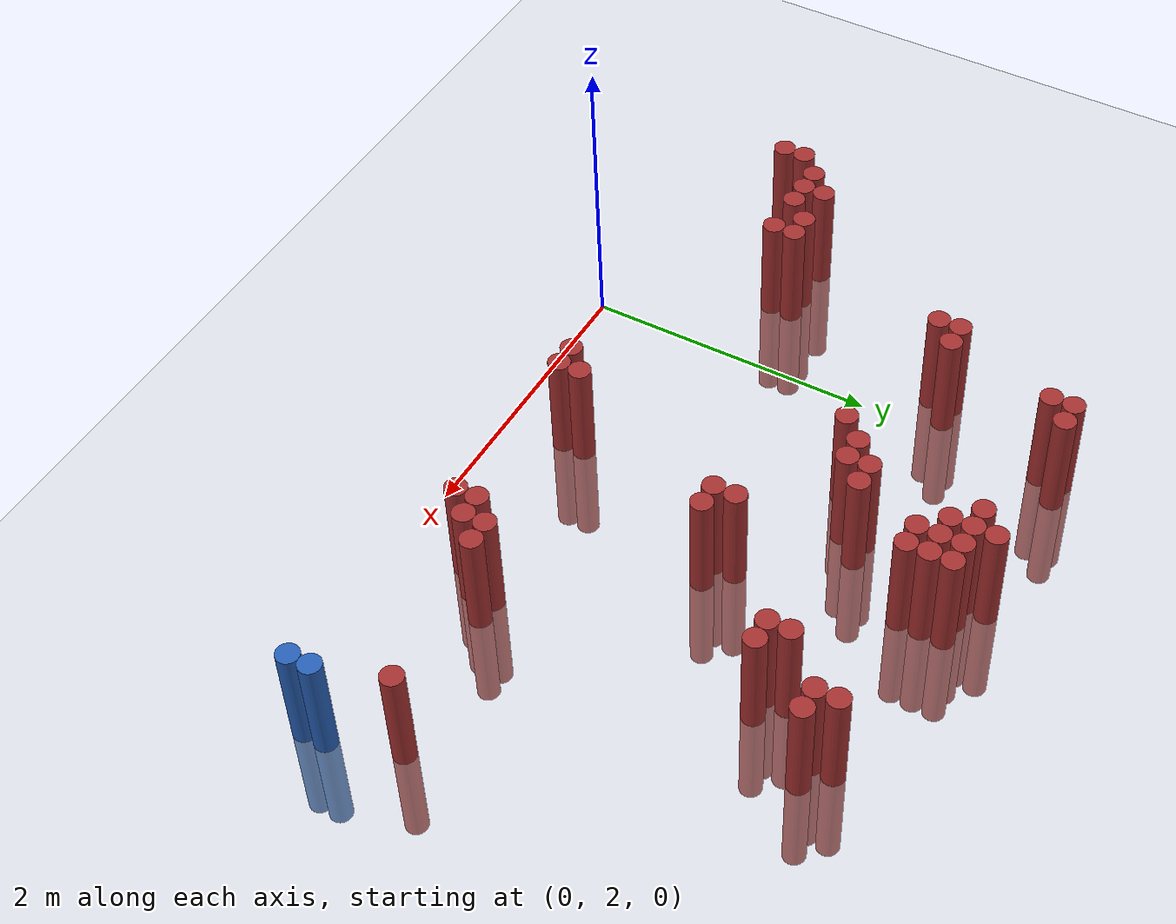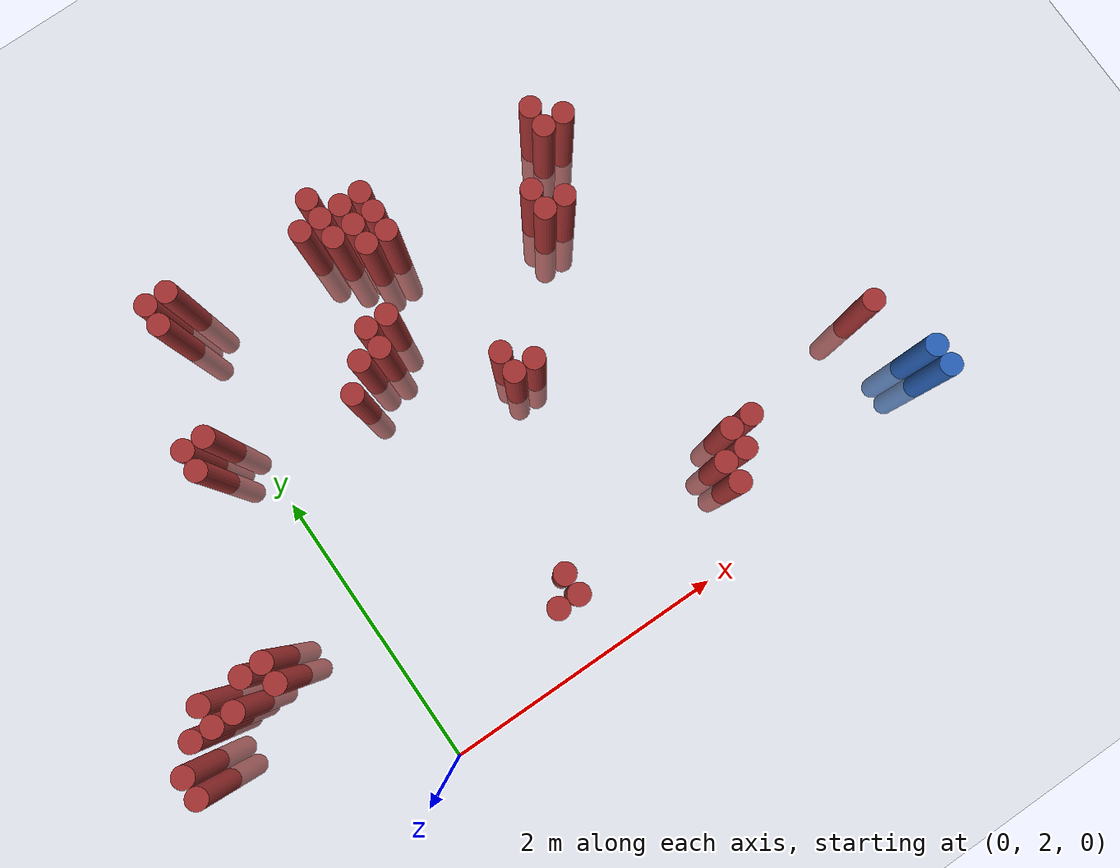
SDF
<sdf version="1.6">
 <world name="default">
  <model name="ground_plane">
   <static>1</static>
   <link name="link">
    <collision name="collision">
     <geometry><plane><normal>0 0 1</normal><size>100 100</size></plane></geometry>
     <surface><friction><ode><mu>100</mu><mu2>50</mu2></ode></friction></surface>
    </collision>
    <visual name="visual">
     <cast_shadows>0</cast_shadows>
     <geometry><plane><normal>0 0 1</normal><size>100 100</size></plane></geometry>
     <material>
      <script><uri>file://media/materials/scripts/gazebo.material</uri><name>Gazebo/Grey</name></script>
     </material>
    </visual>
   </link>
  </model>
  <model name="unit_cylinder_144">
   <static>1</static>
   <pose>3.925000 2.275000 0.000000 0.000000 0.000000 0.000000</pose>
   <link name="link">
    <inertial>
     <mass>1</mass>
     <inertia><ixx>0.145833</ixx><ixy>0</ixy><ixz>0</ixz><iyy>0.145833</iyy><iyz>0</iyz><izz>0.125</izz></inertia>
    </inertial>
    <collision name="collision">
     <geometry><cylinder><radius>0.075000</radius><length>1.5</length></cylinder></geometry>
    </collision>
    <visual name="visual">
     <geometry><cylinder><radius>0.075000</radius><length>1.5</length></cylinder></geometry>
     <material>
      <ambient>0.152000 0.379000 0.720000 1</ambient>
      <diffuse>0.152000 0.379000 0.720000 1</diffuse>
     </material>
     <material>
      <script><name>Gazebo/Grey</name><uri>file://media/materials/scripts/gazebo.material</uri></script>
     </material>
    </visual>
   </link>
  </model>
  <model name="unit_cylinder_146">
   <static>1</static>
   <pose>3.925000 2.425000 0.000000 0.000000 0.000000 0.000000</pose>
   <link name="link">
    <inertial>
     <mass>1</mass>
     <inertia><ixx>0.145833</ixx><ixy>0</ixy><ixz>0</ixz><iyy>0.145833</iyy><iyz>0</iyz><izz>0.125</izz></inertia>
    </inertial>
    <collision name="collision">
     <geometry><cylinder><radius>0.075000</radius><length>1.5</length></cylinder></geometry>
    </collision>
    <visual name="visual">
     <geometry><cylinder><radius>0.075000</radius><length>1.5</length></cylinder></geometry>
     <material>
      <ambient>0.152000 0.379000 0.720000 1</ambient>
      <diffuse>0.152000 0.379000 0.720000 1</diffuse>
     </material>
     <material>
      <script><name>Gazebo/Grey</name><uri>file://media/materials/scripts/gazebo.material</uri></script>
     </material>
    </visual>
   </link>
  </model>
  <model name="unit_cylinder_351">
   <static>1</static>
   <pose>-1.325000 2.725000 0.000000 0.000000 0.000000 0.000000</pose>
   <link name="link">
    <inertial>
     <mass>1</mass>
     <inertia><ixx>0.145833</ixx><ixy>0</ixy><ixz>0</ixz><iyy>0.145833</iyy><iyz>0</iyz><izz>0.125</izz></inertia>
    </inertial>
    <collision name="collision">
     <geometry><cylinder><radius>0.075000</radius><length>1.5</length></cylinder></geometry>
    </collision>
    <visual name="visual">
     <geometry><cylinder><radius>0.075000</radius><length>1.5</length></cylinder></geometry>
     <material>
      <ambient>0.648000 0.192000 0.192000 1</ambient>
      <diffuse>0.648000 0.192000 0.192000 1</diffuse>
     </material>
     <material>
      <script><name>Gazebo/Grey</name><uri>file://media/materials/scripts/gazebo.material</uri></script>
     </material>
    </visual>
   </link>
  </model>
  <model name="unit_cylinder_352">
   <static>1</static>
   <pose>-1.325000 2.875000 0.000000 0.000000 0.000000 0.000000</pose>
   <link name="link">
    <inertial>
     <mass>1</mass>
     <inertia><ixx>0.145833</ixx><ixy>0</ixy><ixz>0</ixz><iyy>0.145833</iyy><iyz>0</iyz><izz>0.125</izz></inertia>
    </inertial>
    <collision name="collision">
     <geometry><cylinder><radius>0.075000</radius><length>1.5</length></cylinder></geometry>
    </collision>
    <visual name="visual">
     <geometry><cylinder><radius>0.075000</radius><length>1.5</length></cylinder></geometry>
     <material>
      <ambient>0.648000 0.192000 0.192000 1</ambient>
      <diffuse>0.648000 0.192000 0.192000 1</diffuse>
     </material>
     <material>
      <script><name>Gazebo/Grey</name><uri>file://media/materials/scripts/gazebo.material</uri></script>
     </material>
    </visual>
   </link>
  </model>
  <model name="unit_cylinder_355">
   <static>1</static>
   <pose>-1.175000 3.025000 0.000000 0.000000 0.000000 0.000000</pose>
   <link name="link">
    <inertial>
     <mass>1</mass>
     <inertia><ixx>0.145833</ixx><ixy>0</ixy><ixz>0</ixz><iyy>0.145833</iyy><iyz>0</iyz><izz>0.125</izz></inertia>
    </inertial>
    <collision name="collision">
     <geometry><cylinder><radius>0.075000</radius><length>1.5</length></cylinder></geometry>
    </collision>
    <visual name="visual">
     <geometry><cylinder><radius>0.075000</radius><length>1.5</length></cylinder></geometry>
     <material>
      <ambient>0.648000 0.192000 0.192000 1</ambient>
      <diffuse>0.648000 0.192000 0.192000 1</diffuse>
     </material>
     <material>
      <script><name>Gazebo/Grey</name><uri>file://media/materials/scripts/gazebo.material</uri></script>
     </material>
    </visual>
   </link>
  </model>
  <model name="unit_cylinder_362">
   <static>1</static>
   <pose>-1.025000 3.025000 0.000000 0.000000 0.000000 0.000000</pose>
   <link name="link">
    <inertial>
     <mass>1</mass>
     <inertia><ixx>0.145833</ixx><ixy>0</ixy><ixz>0</ixz><iyy>0.145833</iyy><iyz>0</iyz><izz>0.125</izz></inertia>
    </inertial>
    <collision name="collision">
     <geometry><cylinder><radius>0.075000</radius><length>1.5</length></cylinder></geometry>
    </collision>
    <visual name="visual">
     <geometry><cylinder><radius>0.075000</radius><length>1.5</length></cylinder></geometry>
     <material>
      <ambient>0.648000 0.192000 0.192000 1</ambient>
      <diffuse>0.648000 0.192000 0.192000 1</diffuse>
     </material>
     <material>
      <script><name>Gazebo/Grey</name><uri>file://media/materials/scripts/gazebo.material</uri></script>
     </material>
    </visual>
   </link>
  </model>
  <model name="unit_cylinder_363">
   <static>1</static>
   <pose>-1.025000 3.175000 0.000000 0.000000 0.000000 0.000000</pose>
   <link name="link">
    <inertial>
     <mass>1</mass>
     <inertia><ixx>0.145833</ixx><ixy>0</ixy><ixz>0</ixz><iyy>0.145833</iyy><iyz>0</iyz><izz>0.125</izz></inertia>
    </inertial>
    <collision name="collision">
     <geometry><cylinder><radius>0.075000</radius><length>1.5</length></cylinder></geometry>
    </collision>
    <visual name="visual">
     <geometry><cylinder><radius>0.075000</radius><length>1.5</length></cylinder></geometry>
     <material>
      <ambient>0.648000 0.192000 0.192000 1</ambient>
      <diffuse>0.648000 0.192000 0.192000 1</diffuse>
     </material>
     <material>
      <script><name>Gazebo/Grey</name><uri>file://media/materials/scripts/gazebo.material</uri></script>
     </material>
    </visual>
   </link>
  </model>
  <model name="unit_cylinder_369">
   <static>1</static>
   <pose>-0.875000 3.025000 0.000000 0.000000 0.000000 0.000000</pose>
   <link name="link">
    <inertial>
     <mass>1</mass>
     <inertia><ixx>0.145833</ixx><ixy>0</ixy><ixz>0</ixz><iyy>0.145833</iyy><iyz>0</iyz><izz>0.125</izz></inertia>
    </inertial>
    <collision name="collision">
     <geometry><cylinder><radius>0.075000</radius><length>1.5</length></cylinder></geometry>
    </collision>
    <visual name="visual">
     <geometry><cylinder><radius>0.075000</radius><length>1.5</length></cylinder></geometry>
     <material>
      <ambient>0.648000 0.192000 0.192000 1</ambient>
      <diffuse>0.648000 0.192000 0.192000 1</diffuse>
     </material>
     <material>
      <script><name>Gazebo/Grey</name><uri>file://media/materials/scripts/gazebo.material</uri></script>
     </material>
    </visual>
   </link>
  </model>
  <model name="unit_cylinder_371">
   <static>1</static>
   <pose>-0.725000 3.175000 0.000000 0.000000 0.000000 0.000000</pose>
   <link name="link">
    <inertial>
     <mass>1</mass>
     <inertia><ixx>0.145833</ixx><ixy>0</ixy><ixz>0</ixz><iyy>0.145833</iyy><iyz>0</iyz><izz>0.125</izz></inertia>
    </inertial>
    <collision name="collision">
     <geometry><cylinder><radius>0.075000</radius><length>1.5</length></cylinder></geometry>
    </collision>
    <visual name="visual">
     <geometry><cylinder><radius>0.075000</radius><length>1.5</length></cylinder></geometry>
     <material>
      <ambient>0.648000 0.192000 0.192000 1</ambient>
      <diffuse>0.648000 0.192000 0.192000 1</diffuse>
     </material>
     <material>
      <script><name>Gazebo/Grey</name><uri>file://media/materials/scripts/gazebo.material</uri></script>
     </material>
    </visual>
   </link>
  </model>
  <model name="unit_cylinder_372">
   <static>1</static>
   <pose>-0.575000 3.025000 0.000000 0.000000 0.000000 0.000000</pose>
   <link name="link">
    <inertial>
     <mass>1</mass>
     <inertia><ixx>0.145833</ixx><ixy>0</ixy><ixz>0</ixz><iyy>0.145833</iyy><iyz>0</iyz><izz>0.125</izz></inertia>
    </inertial>
    <collision name="collision">
     <geometry><cylinder><radius>0.075000</radius><length>1.5</length></cylinder></geometry>
    </collision>
    <visual name="visual">
     <geometry><cylinder><radius>0.075000</radius><length>1.5</length></cylinder></geometry>
     <material>
      <ambient>0.648000 0.192000 0.192000 1</ambient>
      <diffuse>0.648000 0.192000 0.192000 1</diffuse>
     </material>
     <material>
      <script><name>Gazebo/Grey</name><uri>file://media/materials/scripts/gazebo.material</uri></script>
     </material>
    </visual>
   </link>
  </model>
  <model name="unit_cylinder_373">
   <static>1</static>
   <pose>-0.575000 3.175000 0.000000 0.000000 0.000000 0.000000</pose>
   <link name="link">
    <inertial>
     <mass>1</mass>
     <inertia><ixx>0.145833</ixx><ixy>0</ixy><ixz>0</ixz><iyy>0.145833</iyy><iyz>0</iyz><izz>0.125</izz></inertia>
    </inertial>
    <collision name="collision">
     <geometry><cylinder><radius>0.075000</radius><length>1.5</length></cylinder></geometry>
    </collision>
    <visual name="visual">
     <geometry><cylinder><radius>0.075000</radius><length>1.5</length></cylinder></geometry>
     <material>
      <ambient>0.648000 0.192000 0.192000 1</ambient>
      <diffuse>0.648000 0.192000 0.192000 1</diffuse>
     </material>
     <material>
      <script><name>Gazebo/Grey</name><uri>file://media/materials/scripts/gazebo.material</uri></script>
     </material>
    </visual>
   </link>
  </model>
  <model name="unit_cylinder_376">
   <static>1</static>
   <pose>-0.275000 4.375000 0.000000 0.000000 0.000000 0.000000</pose>
   <link name="link">
    <inertial>
     <mass>1</mass>
     <inertia><ixx>0.145833</ixx><ixy>0</ixy><ixz>0</ixz><iyy>0.145833</iyy><iyz>0</iyz><izz>0.125</izz></inertia>
    </inertial>
    <collision name="collision">
     <geometry><cylinder><radius>0.075000</radius><length>1.5</length></cylinder></geometry>
    </collision>
    <visual name="visual">
     <geometry><cylinder><radius>0.075000</radius><length>1.5</length></cylinder></geometry>
     <material>
      <ambient>0.648000 0.192000 0.192000 1</ambient>
      <diffuse>0.648000 0.192000 0.192000 1</diffuse>
     </material>
     <material>
      <script><name>Gazebo/Grey</name><uri>file://media/materials/scripts/gazebo.material</uri></script>
     </material>
    </visual>
   </link>
  </model>
  <model name="unit_cylinder_377">
   <static>1</static>
   <pose>-0.275000 4.525000 0.000000 0.000000 0.000000 0.000000</pose>
   <link name="link">
    <inertial>
     <mass>1</mass>
     <inertia><ixx>0.145833</ixx><ixy>0</ixy><ixz>0</ixz><iyy>0.145833</iyy><iyz>0</iyz><izz>0.125</izz></inertia>
    </inertial>
    <collision name="collision">
     <geometry><cylinder><radius>0.075000</radius><length>1.5</length></cylinder></geometry>
    </collision>
    <visual name="visual">
     <geometry><cylinder><radius>0.075000</radius><length>1.5</length></cylinder></geometry>
     <material>
      <ambient>0.648000 0.192000 0.192000 1</ambient>
      <diffuse>0.648000 0.192000 0.192000 1</diffuse>
     </material>
     <material>
      <script><name>Gazebo/Grey</name><uri>file://media/materials/scripts/gazebo.material</uri></script>
     </material>
    </visual>
   </link>
  </model>
  <model name="unit_cylinder_381">
   <static>1</static>
   <pose>-0.125000 4.525000 0.000000 0.000000 0.000000 0.000000</pose>
   <link name="link">
    <inertial>
     <mass>1</mass>
     <inertia><ixx>0.145833</ixx><ixy>0</ixy><ixz>0</ixz><iyy>0.145833</iyy><iyz>0</iyz><izz>0.125</izz></inertia>
    </inertial>
    <collision name="collision">
     <geometry><cylinder><radius>0.075000</radius><length>1.5</length></cylinder></geometry>
    </collision>
    <visual name="visual">
     <geometry><cylinder><radius>0.075000</radius><length>1.5</length></cylinder></geometry>
     <material>
      <ambient>0.648000 0.192000 0.192000 1</ambient>
      <diffuse>0.648000 0.192000 0.192000 1</diffuse>
     </material>
     <material>
      <script><name>Gazebo/Grey</name><uri>file://media/materials/scripts/gazebo.material</uri></script>
     </material>
    </visual>
   </link>
  </model>
  <model name="unit_cylinder_383">
   <static>1</static>
   <pose>0.025000 5.275000 0.000000 0.000000 0.000000 0.000000</pose>
   <link name="link">
    <inertial>
     <mass>1</mass>
     <inertia><ixx>0.145833</ixx><ixy>0</ixy><ixz>0</ixz><iyy>0.145833</iyy><iyz>0</iyz><izz>0.125</izz></inertia>
    </inertial>
    <collision name="collision">
     <geometry><cylinder><radius>0.075000</radius><length>1.5</length></cylinder></geometry>
    </collision>
    <visual name="visual">
     <geometry><cylinder><radius>0.075000</radius><length>1.5</length></cylinder></geometry>
     <material>
      <ambient>0.648000 0.192000 0.192000 1</ambient>
      <diffuse>0.648000 0.192000 0.192000 1</diffuse>
     </material>
     <material>
      <script><name>Gazebo/Grey</name><uri>file://media/materials/scripts/gazebo.material</uri></script>
     </material>
    </visual>
   </link>
  </model>
  <model name="unit_cylinder_384">
   <static>1</static>
   <pose>0.025000 5.425000 0.000000 0.000000 0.000000 0.000000</pose>
   <link name="link">
    <inertial>
     <mass>1</mass>
     <inertia><ixx>0.145833</ixx><ixy>0</ixy><ixz>0</ixz><iyy>0.145833</iyy><iyz>0</iyz><izz>0.125</izz></inertia>
    </inertial>
    <collision name="collision">
     <geometry><cylinder><radius>0.075000</radius><length>1.5</length></cylinder></geometry>
    </collision>
    <visual name="visual">
     <geometry><cylinder><radius>0.075000</radius><length>1.5</length></cylinder></geometry>
     <material>
      <ambient>0.648000 0.192000 0.192000 1</ambient>
      <diffuse>0.648000 0.192000 0.192000 1</diffuse>
     </material>
     <material>
      <script><name>Gazebo/Grey</name><uri>file://media/materials/scripts/gazebo.material</uri></script>
     </material>
    </visual>
   </link>
  </model>
  <model name="unit_cylinder_385">
   <static>1</static>
   <pose>0.175000 5.425000 0.000000 0.000000 0.000000 0.000000</pose>
   <link name="link">
    <inertial>
     <mass>1</mass>
     <inertia><ixx>0.145833</ixx><ixy>0</ixy><ixz>0</ixz><iyy>0.145833</iyy><iyz>0</iyz><izz>0.125</izz></inertia>
    </inertial>
    <collision name="collision">
     <geometry><cylinder><radius>0.075000</radius><length>1.5</length></cylinder></geometry>
    </collision>
    <visual name="visual">
     <geometry><cylinder><radius>0.075000</radius><length>1.5</length></cylinder></geometry>
     <material>
      <ambient>0.648000 0.192000 0.192000 1</ambient>
      <diffuse>0.648000 0.192000 0.192000 1</diffuse>
     </material>
     <material>
      <script><name>Gazebo/Grey</name><uri>file://media/materials/scripts/gazebo.material</uri></script>
     </material>
    </visual>
   </link>
  </model>
  <model name="unit_cylinder_389">
   <static>1</static>
   <pose>0.775000 4.225000 0.000000 0.000000 0.000000 0.000000</pose>
   <link name="link">
    <inertial>
     <mass>1</mass>
     <inertia><ixx>0.145833</ixx><ixy>0</ixy><ixz>0</ixz><iyy>0.145833</iyy><iyz>0</iyz><izz>0.125</izz></inertia>
    </inertial>
    <collision name="collision">
     <geometry><cylinder><radius>0.075000</radius><length>1.5</length></cylinder></geometry>
    </collision>
    <visual name="visual">
     <geometry><cylinder><radius>0.075000</radius><length>1.5</length></cylinder></geometry>
     <material>
      <ambient>0.648000 0.192000 0.192000 1</ambient>
      <diffuse>0.648000 0.192000 0.192000 1</diffuse>
     </material>
     <material>
      <script><name>Gazebo/Grey</name><uri>file://media/materials/scripts/gazebo.material</uri></script>
     </material>
    </visual>
   </link>
  </model>
  <model name="unit_cylinder_390">
   <static>1</static>
   <pose>0.925000 4.375000 0.000000 0.000000 0.000000 0.000000</pose>
   <link name="link">
    <inertial>
     <mass>1</mass>
     <inertia><ixx>0.145833</ixx><ixy>0</ixy><ixz>0</ixz><iyy>0.145833</iyy><iyz>0</iyz><izz>0.125</izz></inertia>
    </inertial>
    <collision name="collision">
     <geometry><cylinder><radius>0.075000</radius><length>1.5</length></cylinder></geometry>
    </collision>
    <visual name="visual">
     <geometry><cylinder><radius>0.075000</radius><length>1.5</length></cylinder></geometry>
     <material>
      <ambient>0.648000 0.192000 0.192000 1</ambient>
      <diffuse>0.648000 0.192000 0.192000 1</diffuse>
     </material>
     <material>
      <script><name>Gazebo/Grey</name><uri>file://media/materials/scripts/gazebo.material</uri></script>
     </material>
    </visual>
   </link>
  </model>
  <model name="unit_cylinder_391">
   <static>1</static>
   <pose>1.075000 2.425000 0.000000 0.000000 0.000000 0.000000</pose>
   <link name="link">
    <inertial>
     <mass>1</mass>
     <inertia><ixx>0.145833</ixx><ixy>0</ixy><ixz>0</ixz><iyy>0.145833</iyy><iyz>0</iyz><izz>0.125</izz></inertia>
    </inertial>
    <collision name="collision">
     <geometry><cylinder><radius>0.075000</radius><length>1.5</length></cylinder></geometry>
    </collision>
    <visual name="visual">
     <geometry><cylinder><radius>0.075000</radius><length>1.5</length></cylinder></geometry>
     <material>
      <ambient>0.648000 0.192000 0.192000 1</ambient>
      <diffuse>0.648000 0.192000 0.192000 1</diffuse>
     </material>
     <material>
      <script><name>Gazebo/Grey</name><uri>file://media/materials/scripts/gazebo.material</uri></script>
     </material>
    </visual>
   </link>
  </model>
  <model name="unit_cylinder_392">
   <static>1</static>
   <pose>1.075000 4.375000 0.000000 0.000000 0.000000 0.000000</pose>
   <link name="link">
    <inertial>
     <mass>1</mass>
     <inertia><ixx>0.145833</ixx><ixy>0</ixy><ixz>0</ixz><iyy>0.145833</iyy><iyz>0</iyz><izz>0.125</izz></inertia>
    </inertial>
    <collision name="collision">
     <geometry><cylinder><radius>0.075000</radius><length>1.5</length></cylinder></geometry>
    </collision>
    <visual name="visual">
     <geometry><cylinder><radius>0.075000</radius><length>1.5</length></cylinder></geometry>
     <material>
      <ambient>0.648000 0.192000 0.192000 1</ambient>
      <diffuse>0.648000 0.192000 0.192000 1</diffuse>
     </material>
     <material>
      <script><name>Gazebo/Grey</name><uri>file://media/materials/scripts/gazebo.material</uri></script>
     </material>
    </visual>
   </link>
  </model>
  <model name="unit_cylinder_393">
   <static>1</static>
   <pose>1.075000 4.525000 0.000000 0.000000 0.000000 0.000000</pose>
   <link name="link">
    <inertial>
     <mass>1</mass>
     <inertia><ixx>0.145833</ixx><ixy>0</ixy><ixz>0</ixz><iyy>0.145833</iyy><iyz>0</iyz><izz>0.125</izz></inertia>
    </inertial>
    <collision name="collision">
     <geometry><cylinder><radius>0.075000</radius><length>1.5</length></cylinder></geometry>
    </collision>
    <visual name="visual">
     <geometry><cylinder><radius>0.075000</radius><length>1.5</length></cylinder></geometry>
     <material>
      <ambient>0.648000 0.192000 0.192000 1</ambient>
      <diffuse>0.648000 0.192000 0.192000 1</diffuse>
     </material>
     <material>
      <script><name>Gazebo/Grey</name><uri>file://media/materials/scripts/gazebo.material</uri></script>
     </material>
    </visual>
   </link>
  </model>
  <model name="unit_cylinder_394">
   <static>1</static>
   <pose>1.075000 5.275000 0.000000 0.000000 0.000000 0.000000</pose>
   <link name="link">
    <inertial>
     <mass>1</mass>
     <inertia><ixx>0.145833</ixx><ixy>0</ixy><ixz>0</ixz><iyy>0.145833</iyy><iyz>0</iyz><izz>0.125</izz></inertia>
    </inertial>
    <collision name="collision">
     <geometry><cylinder><radius>0.075000</radius><length>1.5</length></cylinder></geometry>
    </collision>
    <visual name="visual">
     <geometry><cylinder><radius>0.075000</radius><length>1.5</length></cylinder></geometry>
     <material>
      <ambient>0.648000 0.192000 0.192000 1</ambient>
      <diffuse>0.648000 0.192000 0.192000 1</diffuse>
     </material>
     <material>
      <script><name>Gazebo/Grey</name><uri>file://media/materials/scripts/gazebo.material</uri></script>
     </material>
    </visual>
   </link>
  </model>
  <model name="unit_cylinder_395">
   <static>1</static>
   <pose>1.225000 2.425000 0.000000 0.000000 0.000000 0.000000</pose>
   <link name="link">
    <inertial>
     <mass>1</mass>
     <inertia><ixx>0.145833</ixx><ixy>0</ixy><ixz>0</ixz><iyy>0.145833</iyy><iyz>0</iyz><izz>0.125</izz></inertia>
    </inertial>
    <collision name="collision">
     <geometry><cylinder><radius>0.075000</radius><length>1.5</length></cylinder></geometry>
    </collision>
    <visual name="visual">
     <geometry><cylinder><radius>0.075000</radius><length>1.5</length></cylinder></geometry>
     <material>
      <ambient>0.648000 0.192000 0.192000 1</ambient>
      <diffuse>0.648000 0.192000 0.192000 1</diffuse>
     </material>
     <material>
      <script><name>Gazebo/Grey</name><uri>file://media/materials/scripts/gazebo.material</uri></script>
     </material>
    </visual>
   </link>
  </model>
  <model name="unit_cylinder_396">
   <static>1</static>
   <pose>1.225000 2.575000 0.000000 0.000000 0.000000 0.000000</pose>
   <link name="link">
    <inertial>
     <mass>1</mass>
     <inertia><ixx>0.145833</ixx><ixy>0</ixy><ixz>0</ixz><iyy>0.145833</iyy><iyz>0</iyz><izz>0.125</izz></inertia>
    </inertial>
    <collision name="collision">
     <geometry><cylinder><radius>0.075000</radius><length>1.5</length></cylinder></geometry>
    </collision>
    <visual name="visual">
     <geometry><cylinder><radius>0.075000</radius><length>1.5</length></cylinder></geometry>
     <material>
      <ambient>0.648000 0.192000 0.192000 1</ambient>
      <diffuse>0.648000 0.192000 0.192000 1</diffuse>
     </material>
     <material>
      <script><name>Gazebo/Grey</name><uri>file://media/materials/scripts/gazebo.material</uri></script>
     </material>
    </visual>
   </link>
  </model>
  <model name="unit_cylinder_397">
   <static>1</static>
   <pose>1.225000 4.525000 0.000000 0.000000 0.000000 0.000000</pose>
   <link name="link">
    <inertial>
     <mass>1</mass>
     <inertia><ixx>0.145833</ixx><ixy>0</ixy><ixz>0</ixz><iyy>0.145833</iyy><iyz>0</iyz><izz>0.125</izz></inertia>
    </inertial>
    <collision name="collision">
     <geometry><cylinder><radius>0.075000</radius><length>1.5</length></cylinder></geometry>
    </collision>
    <visual name="visual">
     <geometry><cylinder><radius>0.075000</radius><length>1.5</length></cylinder></geometry>
     <material>
      <ambient>0.648000 0.192000 0.192000 1</ambient>
      <diffuse>0.648000 0.192000 0.192000 1</diffuse>
     </material>
     <material>
      <script><name>Gazebo/Grey</name><uri>file://media/materials/scripts/gazebo.material</uri></script>
     </material>
    </visual>
   </link>
  </model>
  <model name="unit_cylinder_398">
   <static>1</static>
   <pose>1.225000 5.125000 0.000000 0.000000 0.000000 0.000000</pose>
   <link name="link">
    <inertial>
     <mass>1</mass>
     <inertia><ixx>0.145833</ixx><ixy>0</ixy><ixz>0</ixz><iyy>0.145833</iyy><iyz>0</iyz><izz>0.125</izz></inertia>
    </inertial>
    <collision name="collision">
     <geometry><cylinder><radius>0.075000</radius><length>1.5</length></cylinder></geometry>
    </collision>
    <visual name="visual">
     <geometry><cylinder><radius>0.075000</radius><length>1.5</length></cylinder></geometry>
     <material>
      <ambient>0.648000 0.192000 0.192000 1</ambient>
      <diffuse>0.648000 0.192000 0.192000 1</diffuse>
     </material>
     <material>
      <script><name>Gazebo/Grey</name><uri>file://media/materials/scripts/gazebo.material</uri></script>
     </material>
    </visual>
   </link>
  </model>
  <model name="unit_cylinder_399">
   <static>1</static>
   <pose>1.225000 5.275000 0.000000 0.000000 0.000000 0.000000</pose>
   <link name="link">
    <inertial>
     <mass>1</mass>
     <inertia><ixx>0.145833</ixx><ixy>0</ixy><ixz>0</ixz><iyy>0.145833</iyy><iyz>0</iyz><izz>0.125</izz></inertia>
    </inertial>
    <collision name="collision">
     <geometry><cylinder><radius>0.075000</radius><length>1.5</length></cylinder></geometry>
    </collision>
    <visual name="visual">
     <geometry><cylinder><radius>0.075000</radius><length>1.5</length></cylinder></geometry>
     <material>
      <ambient>0.648000 0.192000 0.192000 1</ambient>
      <diffuse>0.648000 0.192000 0.192000 1</diffuse>
     </material>
     <material>
      <script><name>Gazebo/Grey</name><uri>file://media/materials/scripts/gazebo.material</uri></script>
     </material>
    </visual>
   </link>
  </model>
  <model name="unit_cylinder_400">
   <static>1</static>
   <pose>1.225000 5.425000 0.000000 0.000000 0.000000 0.000000</pose>
   <link name="link">
    <inertial>
     <mass>1</mass>
     <inertia><ixx>0.145833</ixx><ixy>0</ixy><ixz>0</ixz><iyy>0.145833</iyy><iyz>0</iyz><izz>0.125</izz></inertia>
    </inertial>
    <collision name="collision">
     <geometry><cylinder><radius>0.075000</radius><length>1.5</length></cylinder></geometry>
    </collision>
    <visual name="visual">
     <geometry><cylinder><radius>0.075000</radius><length>1.5</length></cylinder></geometry>
     <material>
      <ambient>0.648000 0.192000 0.192000 1</ambient>
      <diffuse>0.648000 0.192000 0.192000 1</diffuse>
     </material>
     <material>
      <script><name>Gazebo/Grey</name><uri>file://media/materials/scripts/gazebo.material</uri></script>
     </material>
    </visual>
   </link>
  </model>
  <model name="unit_cylinder_405">
   <static>1</static>
   <pose>1.375000 4.975000 0.000000 0.000000 0.000000 0.000000</pose>
   <link name="link">
    <inertial>
     <mass>1</mass>
     <inertia><ixx>0.145833</ixx><ixy>0</ixy><ixz>0</ixz><iyy>0.145833</iyy><iyz>0</iyz><izz>0.125</izz></inertia>
    </inertial>
    <collision name="collision">
     <geometry><cylinder><radius>0.075000</radius><length>1.5</length></cylinder></geometry>
    </collision>
    <visual name="visual">
     <geometry><cylinder><radius>0.075000</radius><length>1.5</length></cylinder></geometry>
     <material>
      <ambient>0.648000 0.192000 0.192000 1</ambient>
      <diffuse>0.648000 0.192000 0.192000 1</diffuse>
     </material>
     <material>
      <script><name>Gazebo/Grey</name><uri>file://media/materials/scripts/gazebo.material</uri></script>
     </material>
    </visual>
   </link>
  </model>
  <model name="unit_cylinder_406">
   <static>1</static>
   <pose>1.375000 5.125000 0.000000 0.000000 0.000000 0.000000</pose>
   <link name="link">
    <inertial>
     <mass>1</mass>
     <inertia><ixx>0.145833</ixx><ixy>0</ixy><ixz>0</ixz><iyy>0.145833</iyy><iyz>0</iyz><izz>0.125</izz></inertia>
    </inertial>
    <collision name="collision">
     <geometry><cylinder><radius>0.075000</radius><length>1.5</length></cylinder></geometry>
    </collision>
    <visual name="visual">
     <geometry><cylinder><radius>0.075000</radius><length>1.5</length></cylinder></geometry>
     <material>
      <ambient>0.648000 0.192000 0.192000 1</ambient>
      <diffuse>0.648000 0.192000 0.192000 1</diffuse>
     </material>
     <material>
      <script><name>Gazebo/Grey</name><uri>file://media/materials/scripts/gazebo.material</uri></script>
     </material>
    </visual>
   </link>
  </model>
  <model name="unit_cylinder_407">
   <static>1</static>
   <pose>1.375000 5.275000 0.000000 0.000000 0.000000 0.000000</pose>
   <link name="link">
    <inertial>
     <mass>1</mass>
     <inertia><ixx>0.145833</ixx><ixy>0</ixy><ixz>0</ixz><iyy>0.145833</iyy><iyz>0</iyz><izz>0.125</izz></inertia>
    </inertial>
    <collision name="collision">
     <geometry><cylinder><radius>0.075000</radius><length>1.5</length></cylinder></geometry>
    </collision>
    <visual name="visual">
     <geometry><cylinder><radius>0.075000</radius><length>1.5</length></cylinder></geometry>
     <material>
      <ambient>0.648000 0.192000 0.192000 1</ambient>
      <diffuse>0.648000 0.192000 0.192000 1</diffuse>
     </material>
     <material>
      <script><name>Gazebo/Grey</name><uri>file://media/materials/scripts/gazebo.material</uri></script>
     </material>
    </visual>
   </link>
  </model>
  <model name="unit_cylinder_411">
   <static>1</static>
   <pose>1.525000 4.975000 0.000000 0.000000 0.000000 0.000000</pose>
   <link name="link">
    <inertial>
     <mass>1</mass>
     <inertia><ixx>0.145833</ixx><ixy>0</ixy><ixz>0</ixz><iyy>0.145833</iyy><iyz>0</iyz><izz>0.125</izz></inertia>
    </inertial>
    <collision name="collision">
     <geometry><cylinder><radius>0.075000</radius><length>1.5</length></cylinder></geometry>
    </collision>
    <visual name="visual">
     <geometry><cylinder><radius>0.075000</radius><length>1.5</length></cylinder></geometry>
     <material>
      <ambient>0.648000 0.192000 0.192000 1</ambient>
      <diffuse>0.648000 0.192000 0.192000 1</diffuse>
     </material>
     <material>
      <script><name>Gazebo/Grey</name><uri>file://media/materials/scripts/gazebo.material</uri></script>
     </material>
    </visual>
   </link>
  </model>
  <model name="unit_cylinder_412">
   <static>1</static>
   <pose>1.525000 5.125000 0.000000 0.000000 0.000000 0.000000</pose>
   <link name="link">
    <inertial>
     <mass>1</mass>
     <inertia><ixx>0.145833</ixx><ixy>0</ixy><ixz>0</ixz><iyy>0.145833</iyy><iyz>0</iyz><izz>0.125</izz></inertia>
    </inertial>
    <collision name="collision">
     <geometry><cylinder><radius>0.075000</radius><length>1.5</length></cylinder></geometry>
    </collision>
    <visual name="visual">
     <geometry><cylinder><radius>0.075000</radius><length>1.5</length></cylinder></geometry>
     <material>
      <ambient>0.648000 0.192000 0.192000 1</ambient>
      <diffuse>0.648000 0.192000 0.192000 1</diffuse>
     </material>
     <material>
      <script><name>Gazebo/Grey</name><uri>file://media/materials/scripts/gazebo.material</uri></script>
     </material>
    </visual>
   </link>
  </model>
  <model name="unit_cylinder_413">
   <static>1</static>
   <pose>1.525000 5.275000 0.000000 0.000000 0.000000 0.000000</pose>
   <link name="link">
    <inertial>
     <mass>1</mass>
     <inertia><ixx>0.145833</ixx><ixy>0</ixy><ixz>0</ixz><iyy>0.145833</iyy><iyz>0</iyz><izz>0.125</izz></inertia>
    </inertial>
    <collision name="collision">
     <geometry><cylinder><radius>0.075000</radius><length>1.5</length></cylinder></geometry>
    </collision>
    <visual name="visual">
     <geometry><cylinder><radius>0.075000</radius><length>1.5</length></cylinder></geometry>
     <material>
      <ambient>0.648000 0.192000 0.192000 1</ambient>
      <diffuse>0.648000 0.192000 0.192000 1</diffuse>
     </material>
     <material>
      <script><name>Gazebo/Grey</name><uri>file://media/materials/scripts/gazebo.material</uri></script>
     </material>
    </visual>
   </link>
  </model>
  <model name="unit_cylinder_416">
   <static>1</static>
   <pose>1.675000 3.775000 0.000000 0.000000 0.000000 0.000000</pose>
   <link name="link">
    <inertial>
     <mass>1</mass>
     <inertia><ixx>0.145833</ixx><ixy>0</ixy><ixz>0</ixz><iyy>0.145833</iyy><iyz>0</iyz><izz>0.125</izz></inertia>
    </inertial>
    <collision name="collision">
     <geometry><cylinder><radius>0.075000</radius><length>1.5</length></cylinder></geometry>
    </collision>
    <visual name="visual">
     <geometry><cylinder><radius>0.075000</radius><length>1.5</length></cylinder></geometry>
     <material>
      <ambient>0.648000 0.192000 0.192000 1</ambient>
      <diffuse>0.648000 0.192000 0.192000 1</diffuse>
     </material>
     <material>
      <script><name>Gazebo/Grey</name><uri>file://media/materials/scripts/gazebo.material</uri></script>
     </material>
    </visual>
   </link>
  </model>
  <model name="unit_cylinder_417">
   <static>1</static>
   <pose>1.675000 3.925000 0.000000 0.000000 0.000000 0.000000</pose>
   <link name="link">
    <inertial>
     <mass>1</mass>
     <inertia><ixx>0.145833</ixx><ixy>0</ixy><ixz>0</ixz><iyy>0.145833</iyy><iyz>0</iyz><izz>0.125</izz></inertia>
    </inertial>
    <collision name="collision">
     <geometry><cylinder><radius>0.075000</radius><length>1.5</length></cylinder></geometry>
    </collision>
    <visual name="visual">
     <geometry><cylinder><radius>0.075000</radius><length>1.5</length></cylinder></geometry>
     <material>
      <ambient>0.648000 0.192000 0.192000 1</ambient>
      <diffuse>0.648000 0.192000 0.192000 1</diffuse>
     </material>
     <material>
      <script><name>Gazebo/Grey</name><uri>file://media/materials/scripts/gazebo.material</uri></script>
     </material>
    </visual>
   </link>
  </model>
  <model name="unit_cylinder_425">
   <static>1</static>
   <pose>1.825000 3.775000 0.000000 0.000000 0.000000 0.000000</pose>
   <link name="link">
    <inertial>
     <mass>1</mass>
     <inertia><ixx>0.145833</ixx><ixy>0</ixy><ixz>0</ixz><iyy>0.145833</iyy><iyz>0</iyz><izz>0.125</izz></inertia>
    </inertial>
    <collision name="collision">
     <geometry><cylinder><radius>0.075000</radius><length>1.5</length></cylinder></geometry>
    </collision>
    <visual name="visual">
     <geometry><cylinder><radius>0.075000</radius><length>1.5</length></cylinder></geometry>
     <material>
      <ambient>0.648000 0.192000 0.192000 1</ambient>
      <diffuse>0.648000 0.192000 0.192000 1</diffuse>
     </material>
     <material>
      <script><name>Gazebo/Grey</name><uri>file://media/materials/scripts/gazebo.material</uri></script>
     </material>
    </visual>
   </link>
  </model>
  <model name="unit_cylinder_453">
   <static>1</static>
   <pose>2.425000 2.425000 0.000000 0.000000 0.000000 0.000000</pose>
   <link name="link">
    <inertial>
     <mass>1</mass>
     <inertia><ixx>0.145833</ixx><ixy>0</ixy><ixz>0</ixz><iyy>0.145833</iyy><iyz>0</iyz><izz>0.125</izz></inertia>
    </inertial>
    <collision name="collision">
     <geometry><cylinder><radius>0.075000</radius><length>1.5</length></cylinder></geometry>
    </collision>
    <visual name="visual">
     <geometry><cylinder><radius>0.075000</radius><length>1.5</length></cylinder></geometry>
     <material>
      <ambient>0.648000 0.192000 0.192000 1</ambient>
      <diffuse>0.648000 0.192000 0.192000 1</diffuse>
     </material>
     <material>
      <script><name>Gazebo/Grey</name><uri>file://media/materials/scripts/gazebo.material</uri></script>
     </material>
    </visual>
   </link>
  </model>
  <model name="unit_cylinder_454">
   <static>1</static>
   <pose>2.425000 2.575000 0.000000 0.000000 0.000000 0.000000</pose>
   <link name="link">
    <inertial>
     <mass>1</mass>
     <inertia><ixx>0.145833</ixx><ixy>0</ixy><ixz>0</ixz><iyy>0.145833</iyy><iyz>0</iyz><izz>0.125</izz></inertia>
    </inertial>
    <collision name="collision">
     <geometry><cylinder><radius>0.075000</radius><length>1.5</length></cylinder></geometry>
    </collision>
    <visual name="visual">
     <geometry><cylinder><radius>0.075000</radius><length>1.5</length></cylinder></geometry>
     <material>
      <ambient>0.648000 0.192000 0.192000 1</ambient>
      <diffuse>0.648000 0.192000 0.192000 1</diffuse>
     </material>
     <material>
      <script><name>Gazebo/Grey</name><uri>file://media/materials/scripts/gazebo.material</uri></script>
     </material>
    </visual>
   </link>
  </model>
  <model name="unit_cylinder_455">
   <static>1</static>
   <pose>2.425000 4.525000 0.000000 0.000000 0.000000 0.000000</pose>
   <link name="link">
    <inertial>
     <mass>1</mass>
     <inertia><ixx>0.145833</ixx><ixy>0</ixy><ixz>0</ixz><iyy>0.145833</iyy><iyz>0</iyz><izz>0.125</izz></inertia>
    </inertial>
    <collision name="collision">
     <geometry><cylinder><radius>0.075000</radius><length>1.5</length></cylinder></geometry>
    </collision>
    <visual name="visual">
     <geometry><cylinder><radius>0.075000</radius><length>1.5</length></cylinder></geometry>
     <material>
      <ambient>0.648000 0.192000 0.192000 1</ambient>
      <diffuse>0.648000 0.192000 0.192000 1</diffuse>
     </material>
     <material>
      <script><name>Gazebo/Grey</name><uri>file://media/materials/scripts/gazebo.material</uri></script>
     </material>
    </visual>
   </link>
  </model>
  <model name="unit_cylinder_456">
   <static>1</static>
   <pose>2.425000 4.675000 0.000000 0.000000 0.000000 0.000000</pose>
   <link name="link">
    <inertial>
     <mass>1</mass>
     <inertia><ixx>0.145833</ixx><ixy>0</ixy><ixz>0</ixz><iyy>0.145833</iyy><iyz>0</iyz><izz>0.125</izz></inertia>
    </inertial>
    <collision name="collision">
     <geometry><cylinder><radius>0.075000</radius><length>1.5</length></cylinder></geometry>
    </collision>
    <visual name="visual">
     <geometry><cylinder><radius>0.075000</radius><length>1.5</length></cylinder></geometry>
     <material>
      <ambient>0.648000 0.192000 0.192000 1</ambient>
      <diffuse>0.648000 0.192000 0.192000 1</diffuse>
     </material>
     <material>
      <script><name>Gazebo/Grey</name><uri>file://media/materials/scripts/gazebo.material</uri></script>
     </material>
    </visual>
   </link>
  </model>
  <model name="unit_cylinder_461">
   <static>1</static>
   <pose>2.575000 2.575000 0.000000 0.000000 0.000000 0.000000</pose>
   <link name="link">
    <inertial>
     <mass>1</mass>
     <inertia><ixx>0.145833</ixx><ixy>0</ixy><ixz>0</ixz><iyy>0.145833</iyy><iyz>0</iyz><izz>0.125</izz></inertia>
    </inertial>
    <collision name="collision">
     <geometry><cylinder><radius>0.075000</radius><length>1.5</length></cylinder></geometry>
    </collision>
    <visual name="visual">
     <geometry><cylinder><radius>0.075000</radius><length>1.5</length></cylinder></geometry>
     <material>
      <ambient>0.648000 0.192000 0.192000 1</ambient>
      <diffuse>0.648000 0.192000 0.192000 1</diffuse>
     </material>
     <material>
      <script><name>Gazebo/Grey</name><uri>file://media/materials/scripts/gazebo.material</uri></script>
     </material>
    </visual>
   </link>
  </model>
  <model name="unit_cylinder_462">
   <static>1</static>
   <pose>2.575000 2.725000 0.000000 0.000000 0.000000 0.000000</pose>
   <link name="link">
    <inertial>
     <mass>1</mass>
     <inertia><ixx>0.145833</ixx><ixy>0</ixy><ixz>0</ixz><iyy>0.145833</iyy><iyz>0</iyz><izz>0.125</izz></inertia>
    </inertial>
    <collision name="collision">
     <geometry><cylinder><radius>0.075000</radius><length>1.5</length></cylinder></geometry>
    </collision>
    <visual name="visual">
     <geometry><cylinder><radius>0.075000</radius><length>1.5</length></cylinder></geometry>
     <material>
      <ambient>0.648000 0.192000 0.192000 1</ambient>
      <diffuse>0.648000 0.192000 0.192000 1</diffuse>
     </material>
     <material>
      <script><name>Gazebo/Grey</name><uri>file://media/materials/scripts/gazebo.material</uri></script>
     </material>
    </visual>
   </link>
  </model>
  <model name="unit_cylinder_463">
   <static>1</static>
   <pose>2.575000 4.525000 0.000000 0.000000 0.000000 0.000000</pose>
   <link name="link">
    <inertial>
     <mass>1</mass>
     <inertia><ixx>0.145833</ixx><ixy>0</ixy><ixz>0</ixz><iyy>0.145833</iyy><iyz>0</iyz><izz>0.125</izz></inertia>
    </inertial>
    <collision name="collision">
     <geometry><cylinder><radius>0.075000</radius><length>1.5</length></cylinder></geometry>
    </collision>
    <visual name="visual">
     <geometry><cylinder><radius>0.075000</radius><length>1.5</length></cylinder></geometry>
     <material>
      <ambient>0.648000 0.192000 0.192000 1</ambient>
      <diffuse>0.648000 0.192000 0.192000 1</diffuse>
     </material>
     <material>
      <script><name>Gazebo/Grey</name><uri>file://media/materials/scripts/gazebo.material</uri></script>
     </material>
    </visual>
   </link>
  </model>
  <model name="unit_cylinder_466">
   <static>1</static>
   <pose>2.725000 2.725000 0.000000 0.000000 0.000000 0.000000</pose>
   <link name="link">
    <inertial>
     <mass>1</mass>
     <inertia><ixx>0.145833</ixx><ixy>0</ixy><ixz>0</ixz><iyy>0.145833</iyy><iyz>0</iyz><izz>0.125</izz></inertia>
    </inertial>
    <collision name="collision">
     <geometry><cylinder><radius>0.075000</radius><length>1.5</length></cylinder></geometry>
    </collision>
    <visual name="visual">
     <geometry><cylinder><radius>0.075000</radius><length>1.5</length></cylinder></geometry>
     <material>
      <ambient>0.648000 0.192000 0.192000 1</ambient>
      <diffuse>0.648000 0.192000 0.192000 1</diffuse>
     </material>
     <material>
      <script><name>Gazebo/Grey</name><uri>file://media/materials/scripts/gazebo.material</uri></script>
     </material>
    </visual>
   </link>
  </model>
  <model name="unit_cylinder_467">
   <static>1</static>
   <pose>2.725000 4.975000 0.000000 0.000000 0.000000 0.000000</pose>
   <link name="link">
    <inertial>
     <mass>1</mass>
     <inertia><ixx>0.145833</ixx><ixy>0</ixy><ixz>0</ixz><iyy>0.145833</iyy><iyz>0</iyz><izz>0.125</izz></inertia>
    </inertial>
    <collision name="collision">
     <geometry><cylinder><radius>0.075000</radius><length>1.5</length></cylinder></geometry>
    </collision>
    <visual name="visual">
     <geometry><cylinder><radius>0.075000</radius><length>1.5</length></cylinder></geometry>
     <material>
      <ambient>0.648000 0.192000 0.192000 1</ambient>
      <diffuse>0.648000 0.192000 0.192000 1</diffuse>
     </material>
     <material>
      <script><name>Gazebo/Grey</name><uri>file://media/materials/scripts/gazebo.material</uri></script>
     </material>
    </visual>
   </link>
  </model>
  <model name="unit_cylinder_468">
   <static>1</static>
   <pose>2.725000 5.125000 0.000000 0.000000 0.000000 0.000000</pose>
   <link name="link">
    <inertial>
     <mass>1</mass>
     <inertia><ixx>0.145833</ixx><ixy>0</ixy><ixz>0</ixz><iyy>0.145833</iyy><iyz>0</iyz><izz>0.125</izz></inertia>
    </inertial>
    <collision name="collision">
     <geometry><cylinder><radius>0.075000</radius><length>1.5</length></cylinder></geometry>
    </collision>
    <visual name="visual">
     <geometry><cylinder><radius>0.075000</radius><length>1.5</length></cylinder></geometry>
     <material>
      <ambient>0.648000 0.192000 0.192000 1</ambient>
      <diffuse>0.648000 0.192000 0.192000 1</diffuse>
     </material>
     <material>
      <script><name>Gazebo/Grey</name><uri>file://media/materials/scripts/gazebo.material</uri></script>
     </material>
    </visual>
   </link>
  </model>
  <model name="unit_cylinder_470">
   <static>1</static>
   <pose>2.875000 4.975000 0.000000 0.000000 0.000000 0.000000</pose>
   <link name="link">
    <inertial>
     <mass>1</mass>
     <inertia><ixx>0.145833</ixx><ixy>0</ixy><ixz>0</ixz><iyy>0.145833</iyy><iyz>0</iyz><izz>0.125</izz></inertia>
    </inertial>
    <collision name="collision">
     <geometry><cylinder><radius>0.075000</radius><length>1.5</length></cylinder></geometry>
    </collision>
    <visual name="visual">
     <geometry><cylinder><radius>0.075000</radius><length>1.5</length></cylinder></geometry>
     <material>
      <ambient>0.648000 0.192000 0.192000 1</ambient>
      <diffuse>0.648000 0.192000 0.192000 1</diffuse>
     </material>
     <material>
      <script><name>Gazebo/Grey</name><uri>file://media/materials/scripts/gazebo.material</uri></script>
     </material>
    </visual>
   </link>
  </model>
  <model name="unit_cylinder_510">
   <static>1</static>
   <pose>3.775000 2.875000 0.000000 0.000000 0.000000 0.000000</pose>
   <link name="link">
    <inertial>
     <mass>1</mass>
     <inertia><ixx>0.145833</ixx><ixy>0</ixy><ixz>0</ixz><iyy>0.145833</iyy><iyz>0</iyz><izz>0.125</izz></inertia>
    </inertial>
    <collision name="collision">
     <geometry><cylinder><radius>0.075000</radius><length>1.5</length></cylinder></geometry>
    </collision>
    <visual name="visual">
     <geometry><cylinder><radius>0.075000</radius><length>1.5</length></cylinder></geometry>
     <material>
      <ambient>0.648000 0.192000 0.192000 1</ambient>
      <diffuse>0.648000 0.192000 0.192000 1</diffuse>
     </material>
     <material>
      <script><name>Gazebo/Grey</name><uri>file://media/materials/scripts/gazebo.material</uri></script>
     </material>
    </visual>
   </link>
  </model>
  <model name="unit_cylinder_539">
   <static>1</static>
   <pose>3.925000 2.275000 0.000000 0.000000 0.000000 0.000000</pose>
   <link name="link">
    <inertial>
     <mass>1</mass>
     <inertia><ixx>0.145833</ixx><ixy>0</ixy><ixz>0</ixz><iyy>0.145833</iyy><iyz>0</iyz><izz>0.125</izz></inertia>
    </inertial>
    <collision name="collision">
     <geometry><cylinder><radius>0.075000</radius><length>1.5</length></cylinder></geometry>
    </collision>
    <visual name="visual">
     <geometry><cylinder><radius>0.075000</radius><length>1.5</length></cylinder></geometry>
     <material>
      <ambient>0.152000 0.379000 0.720000 1</ambient>
      <diffuse>0.152000 0.379000 0.720000 1</diffuse>
     </material>
     <material>
      <script><name>Gazebo/Grey</name><uri>file://media/materials/scripts/gazebo.material</uri></script>
     </material>
    </visual>
   </link>
  </model>
 </world>
</sdf>
